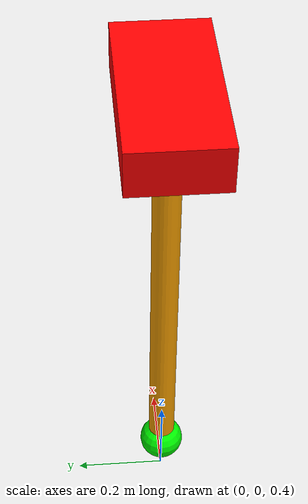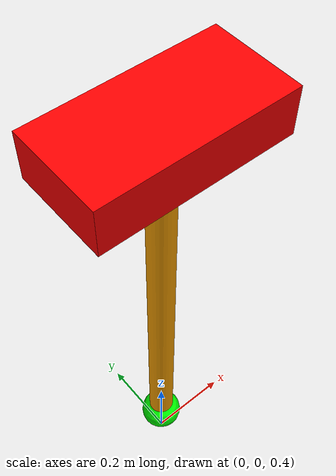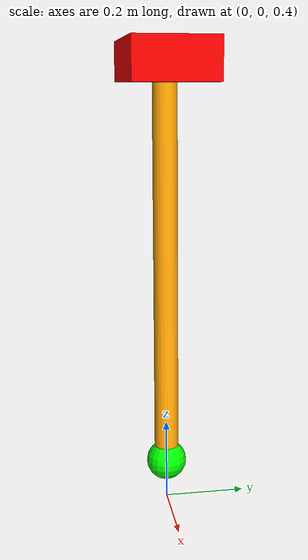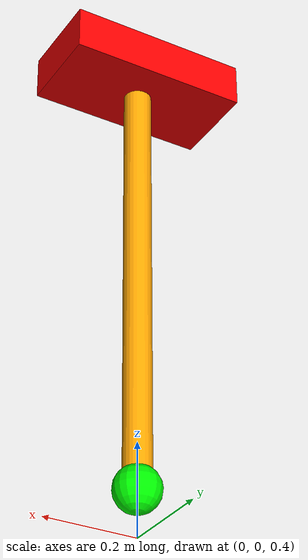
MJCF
<mujoco model="inverted_pendulum">
  <compiler angle="radian" coordinate="local"/>

  <option gravity="0 0 -9.81" timestep="0.001" iterations="50" solver="Newton"/>

  <default>
    <geom type="cylinder" rgba="0.2 0.2 1 1" contype="1" conaffinity="1"/>
  </default>

  <statistic center="0 0 0.1" extent="0.8"/>

  <worldbody>
    <body name="base" pos="0 0 1.5">
      <!-- You can visualize the base if needed -->
      <geom type="box" size="0.2 0.1 0.05" rgba="1 0 0 1" contype="0" conaffinity="0"/>

      <!-- Pendulum link -->
      <body name="pendulum_link" pos="0 0 0">
        <inertial pos="0 0 -0.5" mass="1.0" diaginertia="0.01 0.01 0.0001"/>
        <joint name="pivot" type="hinge" pos="0 0 0" axis="0 1 0" damping="0.1" range="-3.14159265 3.14159265" limited="true"/>
        <geom type="cylinder" size="0.03 0.5" pos="0 0 -0.5" rgba="1 0.647 0 1" contype="0" conaffinity="0"/>
        <body name="tip" pos="0 0 -1.0">
          <inertial pos="0 0 0" mass="0.1" diaginertia="0.001 0.001 0.001"/>
          <geom type="sphere" size="0.05" rgba="0 1 0 1" contype="0" conaffinity="0"/>
        </body>
      </body>
    </body>
  </worldbody>

  <actuator>
  </actuator>

  <sensor>
    <jointpos joint="pivot" name="joint_position"/>
    <jointvel joint="pivot" name="joint_velocity"/>
    <jointactuatorfrc joint="pivot" name="joint_torque"/>
    <framepos objtype="body" objname="tip" name="tip_position"/>
    <framelinvel objtype="body" objname="tip" name="tip_velocity"/>
  </sensor>

  <keyframe>
    <key name="initial" qpos="0.0" qvel="0.0"/>
  </keyframe>
</mujoco>
